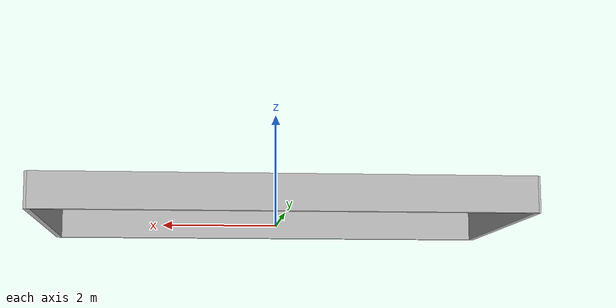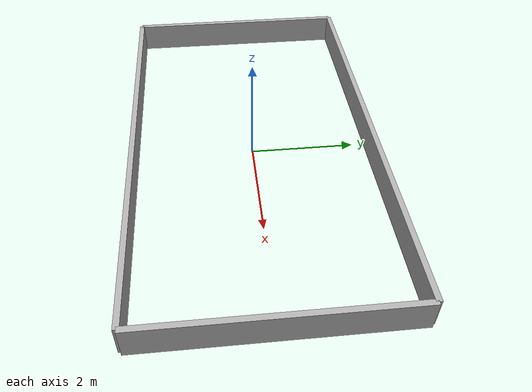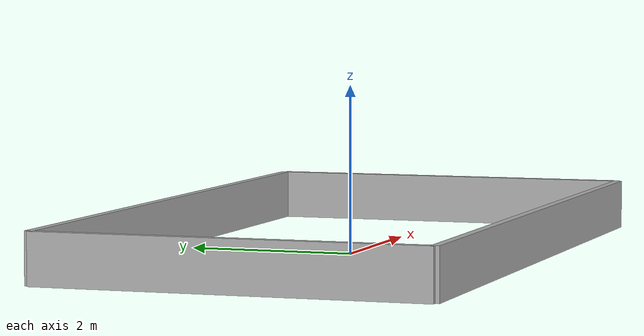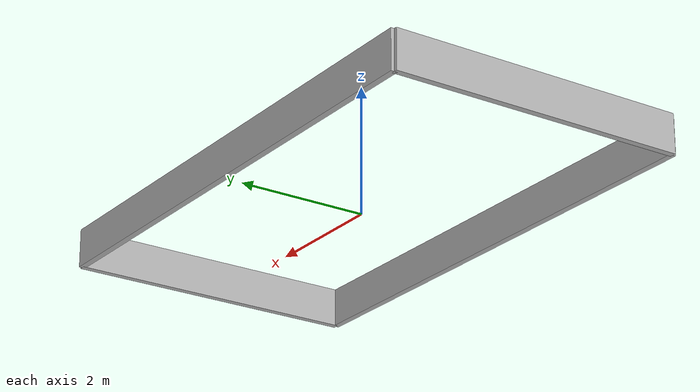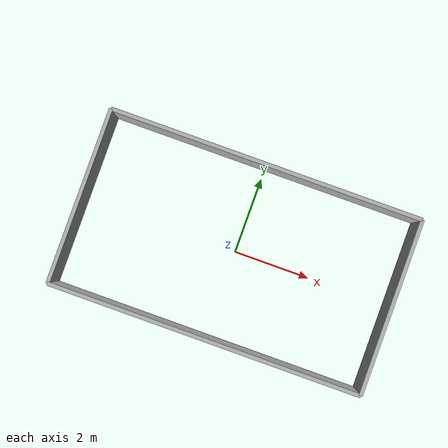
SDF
<?xml version="1.0" ?>
<sdf version='1.7'>
  <model name='arena_frame_ucf'>
    <pose>0 0 0 0 0 0</pose>
    <static>true</static>

    <!-- Left Wall (construction side)  X=-4.07, spans full Y 4.57 m -->
    <link name='left_wall'>
      <pose>-4.07 0 0.3 0 0 0</pose>
      <collision name='collision'>
        <geometry><box><size>0.1 4.57 0.6</size></box></geometry>
      </collision>
      <visual name='visual'>
        <geometry><box><size>0.1 4.57 0.6</size></box></geometry>
        <material>
          <ambient>0.7 0.7 0.7 1</ambient>
          <diffuse>0.7 0.7 0.7 1</diffuse>
        </material>
      </visual>
    </link>

    <!-- Right Wall (excavation / fiducial side)  X=+4.07, spans full Y 4.57 m -->
    <link name='right_wall'>
      <pose>4.07 0 0.3 0 0 0</pose>
      <collision name='collision'>
        <geometry><box><size>0.1 4.57 0.6</size></box></geometry>
      </collision>
      <visual name='visual'>
        <geometry><box><size>0.1 4.57 0.6</size></box></geometry>
        <material>
          <ambient>0.7 0.7 0.7 1</ambient>
          <diffuse>0.7 0.7 0.7 1</diffuse>
        </material>
      </visual>
    </link>

    <!-- Top Wall  Y=+2.285, spans full X 8.14 m -->
    <link name='top_wall'>
      <pose>0 2.285 0.3 0 0 0</pose>
      <collision name='collision'>
        <geometry><box><size>8.14 0.1 0.6</size></box></geometry>
      </collision>
      <visual name='visual'>
        <geometry><box><size>8.14 0.1 0.6</size></box></geometry>
        <material>
          <ambient>0.7 0.7 0.7 1</ambient>
          <diffuse>0.7 0.7 0.7 1</diffuse>
        </material>
      </visual>
    </link>

    <!-- Bottom Wall  Y=-2.285, spans full X 8.14 m -->
    <link name='bottom_wall'>
      <pose>0 -2.285 0.3 0 0 0</pose>
      <collision name='collision'>
        <geometry><box><size>8.14 0.1 0.6</size></box></geometry>
      </collision>
      <visual name='visual'>
        <geometry><box><size>8.14 0.1 0.6</size></box></geometry>
        <material>
          <ambient>0.7 0.7 0.7 1</ambient>
          <diffuse>0.7 0.7 0.7 1</diffuse>
        </material>
      </visual>
    </link>

  </model>
</sdf>
